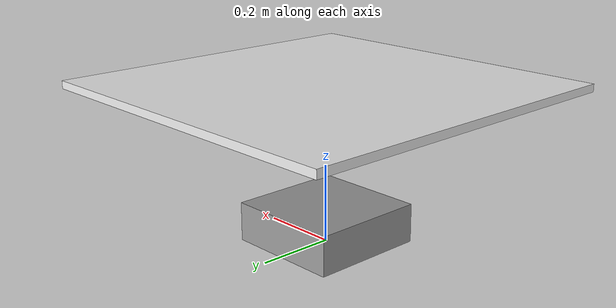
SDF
<?xml version="1.0" ?>
<sdf version="1.6">
  <model name="tilting_table">
    <static>false</static>

    <!-- Base link: fixed to the world -->
    <link name="base">
      <pose>0 0 0.05 0 0 0</pose>
      <inertial>
        <mass>0.1</mass>
        <inertia>
          <ixx>0.1</ixx> <ixy>0</ixy> <ixz>0</ixz>
          <iyy>0.1</iyy> <iyz>0</iyz>
          <izz>0.1</izz>
        </inertia>
      </inertial>
      <collision name="base_collision">
        <geometry>
          <box>
            <size>0.3 0.3 0.1</size>
          </box>
        </geometry>
        <surface>
          <contact>
            <collide_bitmask>0</collide_bitmask>
          </contact>
        </surface>
      </collision>
      <visual name="base_visual">
        <geometry>
          <box>
            <size>0.3 0.3 0.1</size>
          </box>
        </geometry>
        <material>
          <script>
            <uri>file://media/materials/scripts/gazebo.material</uri>
            <name>Gazebo/Grey</name>
          </script>
        </material>
      </visual>
    </link>

    <!-- Intermediate link for decoupling rotations -->
    <link name="tilt_intermediate">
      <!-- Positioned at the top of the base -->
      <pose>0 0 0.1 0 0 0</pose>
      <inertial>
        <mass>0.02</mass>
        <inertia>
          <ixx>0.005</ixx> <ixy>0</ixy> <ixz>0</ixz>
          <iyy>0.005</iyy> <iyz>0</iyz>
          <izz>0.005</izz>
        </inertia>
      </inertial>
    </link>

    <!-- Plate link: the table top -->
    <link name="plate">
      <!-- Positioned above the intermediate link -->
      <pose>0 0 0.4 0 0 0</pose>
      <inertial>
        <mass>0.1</mass>
        <inertia>
          <ixx>0.01</ixx> <ixy>0</ixy> <ixz>0</ixz>
          <iyy>0.01</iyy> <iyz>0</iyz>
          <izz>0.01</izz>
        </inertia>
      </inertial>
      <collision name="plate_collision">
        <geometry>
          <box>
            <size>0.9 0.9 0.02</size>
          </box>
        </geometry>
        <surface>
          <contact>
            <ode>
              <kp>1e6</kp>
              <kd>100</kd>
            </ode>
          </contact>
          <friction>
            <ode>
              <mu>0.2</mu>
              <mu2>0.2</mu2>
            </ode>
          </friction>
        </surface>
      </collision>
      <visual name="plate_visual">
        <geometry>
          <box>
            <size>0.9 0.9 0.02</size>
          </box>
        </geometry>
        <material>
          <script>
            <uri>file://media/materials/scripts/gazebo.material</uri>
            <name>Gazebo/White</name>
          </script>
        </material>
      </visual>
    </link>

    <!-- Fixed joint connecting the base to the world -->
    <joint name="fixed_base" type="fixed">
      <parent>world</parent>
      <child>base</child>
    </joint>

    <!-- Revolute joint for x-axis tilt (joint_x) -->
    <joint name="joint_x" type="revolute">
      <parent>base</parent>
      <child>tilt_intermediate</child>
      <!-- Joint positioned at the top of the base -->
      <pose>0 0 0.5 0 0 0</pose>
      <axis>
        <xyz>1 0 0</xyz>
        <limit>
          <lower>-0.5</lower>
          <upper>0.5</upper>
          <effort>20</effort>
          <velocity>5</velocity>
        </limit>
        <dynamics>
          <damping>0.5</damping>
        </dynamics>
      </axis>
    </joint>

    <!-- Revolute joint for y-axis tilt (joint_y) -->
    <joint name="joint_y" type="revolute">
      <parent>tilt_intermediate</parent>
      <child>plate</child>
      <!-- Joint positioned at the top of the intermediate link -->
      <pose>0 0 0.1 0 0 0</pose>
      <axis>
        <xyz>0 1 0</xyz>
        <limit>
          <lower>-0.5</lower>
          <upper>0.5</upper>
          <effort>20</effort>
          <velocity>5</velocity>
        </limit>
        <dynamics>
          <damping>0.5</damping>
        </dynamics>
      </axis>
    </joint>

    <!-- Joint state publisher plugin for monitoring -->
    <plugin name="gazebo_ros_joint_state_publisher" filename="libgazebo_ros_joint_state_publisher.so">
      <robotNamespace>/</robotNamespace>
    </plugin>

  </model>
</sdf>
